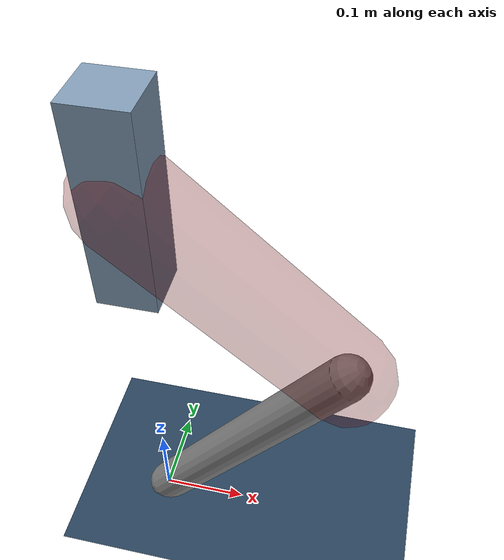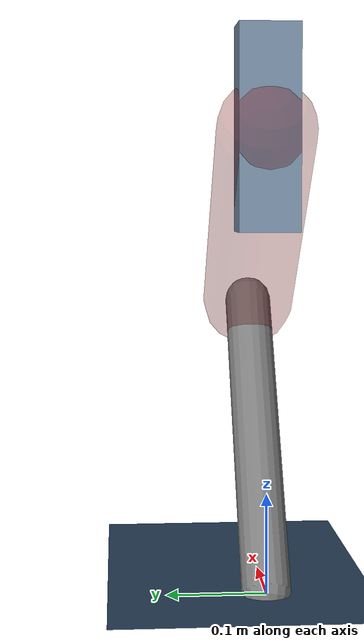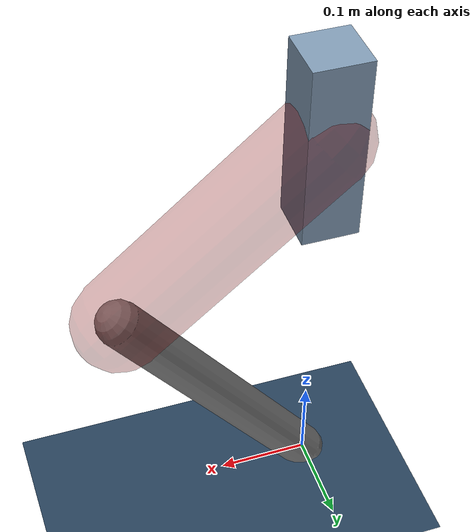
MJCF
<mujoco model="Hopper2D">
	<compiler inertiafromgeom="true" angle="radian" />
	<option timestep="0.001" integrator="implicit" cone="elliptic" solver="Newton" tolerance="1e-10" />

	<default>
		<geom contype="1" conaffinity="1" condim="3" friction="2 0.005 0.0001" solref="0.005 1" />
		<joint limited="true" damping="0.1" />
	</default>

	<asset>
		<texture name="skybox" type="skybox" builtin="gradient" rgb1=".4 .6 .8" rgb2="0 0 0" width="800" height="800" />
		<texture name="grid" type="2d" builtin="checker" rgb1=".1 .2 .3" rgb2=".2 .3 .4" width="300" height="300" mark="edge" markrgb=".2 .3 .4" />
		<material name="ground" texture="grid" texrepeat="1 1" texuniform="true" reflectance="0.1" />
		<material name="leg" rgba="0.5 0.6 0.7 1" />
	</asset>

	<worldbody>

		<geom name="floor" type="plane" size="5 5 0.25" material="ground" />

		<light directional="false" diffuse="0.8 0.8 0.8" specular="0.3 0.3 0.3" pos="0 0 2" dir="0 0 -1" />
		<light mode="targetbodycom" target="base" directional="false" diffuse="0.8 0.8 0.8" specular="0.3 0.3 0.3" pos="0 0 2" dir="0 0 -1" />

		<camera name="fixed" pos="0 -2 1" xyaxes="1 0 0 0 0 1" />
		<camera name="tracking" mode="trackcom" pos="0 -3 1" />

		<body name="root" pos="0 0 0.4603124684372547">
			<joint name="slide_x" type="slide" axis="1 0 0" range="-100 100" />
			<joint name="slide_z" type="slide" axis="0 0 1" range="0 10" />

			<body name="base" pos="0 0 0">
				<geom name="torso" type="box" size="0.03 0.03 0.1" mass="2.636" material="leg" />

				<body name="link1" pos="0 0 0" euler="0 0.7118803432138523 0">
					<joint type="hinge" axis="0 -1 0" pos="0 0 0" name="hinge1" limited="true" range="-3.14 3.14" stiffness="0" damping="0.1" />
					<geom name="thigh" type="capsule" fromto="0 0 0 0.27769031649199216 0 0" size="0.05" rgba="0.5 0 0 0.3" mass="0.9289948228791796" />

					<body name="link2" pos="0.27769031649199216 0 0" euler="0 1.5048618190075023 0">
						<joint type="hinge" axis="0 -1 0" pos="0 0 0" name="hinge2" limited="true" range="-3.14 3.14" stiffness="0" damping="0.1" />
						<geom name="shank" type="capsule" fromto="0 0 0 0.34927756109417174 0 0" size="0.025" mass="0.5233220488753374" />

					</body>
				</body>
			</body>
		</body>
	</worldbody>

	<actuator>
		<motor name="torque1" joint="hinge1" ctrlrange="-44.20307401058635 44.20307401058635" ctrllimited="true" gear="1" />
		<motor name="torque2" joint="hinge2" ctrlrange="-98.81676474441578 98.81676474441578" ctrllimited="true" gear="1" />
	</actuator>
</mujoco>
